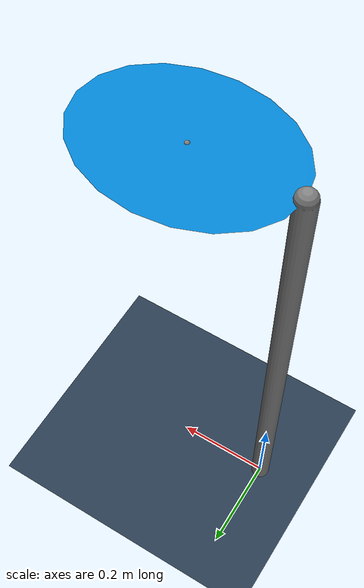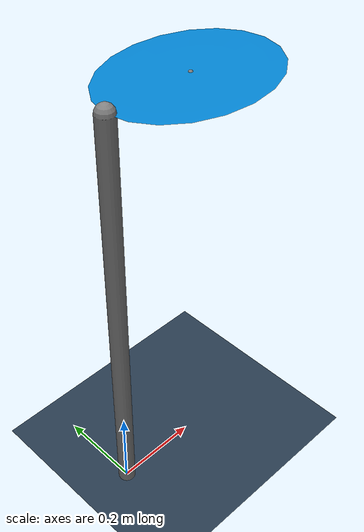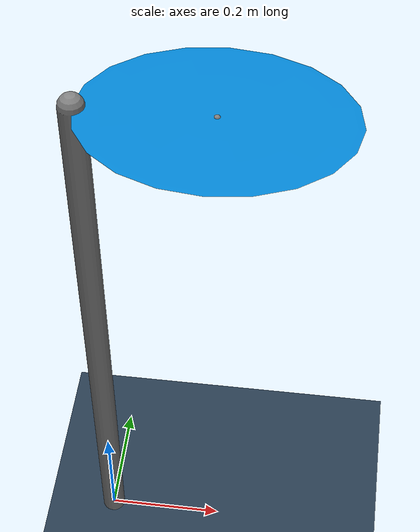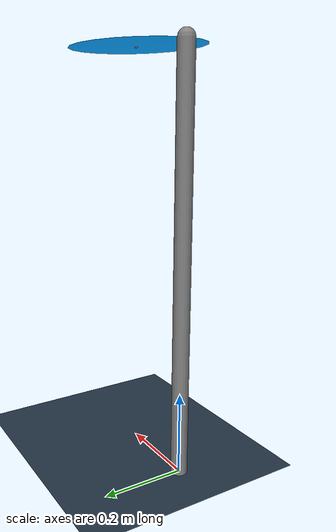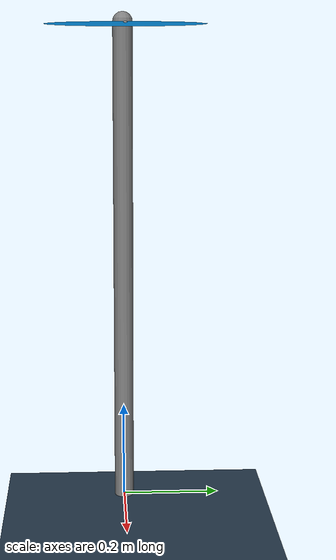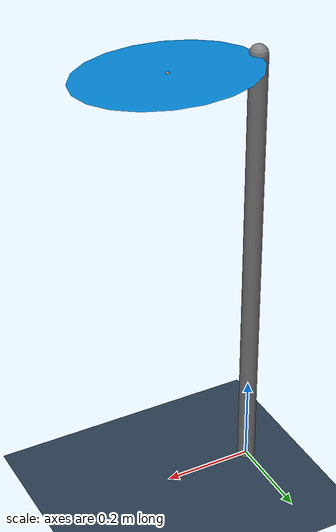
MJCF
<mujoco model="wind_flag">
  <statistic extent="1.2" center="0 0 0.6"/>

  <visual>
    <global realtime="0.5"/>
    <rgba haze="0.15 0.25 0.35 1"/>
    <scale forcewidth="0.05" contactwidth="0.1" contactheight="0.05"/>
  </visual>

  <asset>
    <texture type="skybox" builtin="gradient" rgb1="0.3 0.5 0.7" rgb2="0 0 0" width="64" height="64"/>
    <texture name="grid" type="2d" builtin="checker" rgb1=".2 .3 .4" rgb2=".1 .15 .2"
             width="512" height="512" mark="cross" markrgb=".8 .8 .8"/>
    <material name="grid" texture="grid" texrepeat="2 2" reflectance="0.2"/>
  </asset>

  <!-- gusty wind along +x; air density + viscosity enable lift/drag -->
  <option density="1.225" viscosity="2.8e-5" wind="10 10 1" integrator="implicitfast" timestep="0.002"/>

  <worldbody>
    <light pos="0 -1 3" dir="0 1 -2" diffuse="1 1 1"/>
    <geom name="ground" type="plane" size="3 3 .1" material="grid" condim="3"/>

    <!-- fixed mast -->
    <geom name="mast" type="capsule" fromto="0 0 0 0 0 1.0" size="0.02" rgba=".5 .5 .5 1"/>

    <!-- plate tethered at the top of the mast by a ball joint: it swings and
         flutters in the wind but stays in frame -->
    <body name="flag" pos="0 0 1.0">
      <joint name="swing" type="ball" damping="0.002"/>
      <geom name="flag" type="ellipsoid" pos="0.2 0 0" size="0.2 0.15 0.002"
            mass="0.01" fluidshape="ellipsoid" rgba="0 .5 .8 1"/>
      <site name="flagcenter" pos="0.2 0 0"/>
    </body>
  </worldbody>

  <sensor>
    <!-- live readouts shown in simulate's sensor plot -->
    <accelerometer name="accel" site="flagcenter"/>
    <velocimeter   name="vel"   site="flagcenter"/>
    <framepos      name="pos"   objtype="site" objname="flagcenter"/>
  </sensor>
</mujoco>
